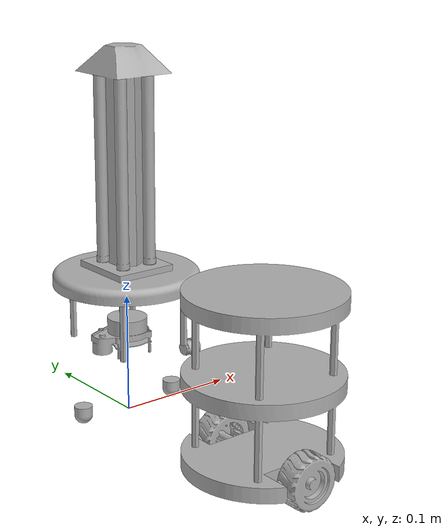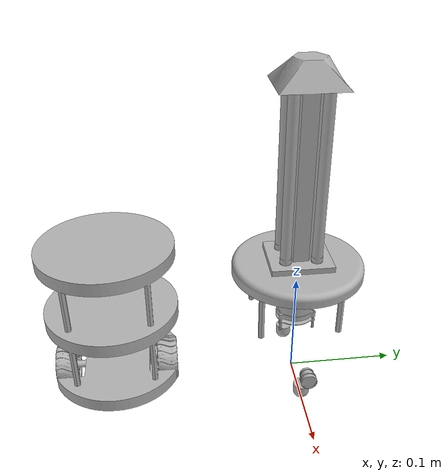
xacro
<?xml version="1.0" ?>
<robot name="robot_2" xmlns:xacro="http://www.ros.org/wiki/xacro">

<xacro:include filename="$(find robot_2_description)/urdf/materials.xacro" />
<xacro:include filename="$(find robot_2_description)/urdf/robot_2.trans" />

<xacro:include filename="$(find robot_2_description)/urdf/g_plugins.gazebo" />
<xacro:include filename="$(find robot_2_description)/urdf/g_materials.gazebo" />

<link name="base_link">
  <inertial>
    <origin rpy="0 0 0" xyz="3.5816918795225934e-16 2.8066438062523963e-15 0.039965017681875464"/>
    <mass value="3.4554954622682565"/>
    <inertia ixx="0.002966" ixy="0.0" ixz="-0.0" iyy="0.004254" iyz="0.0" izz="0.005908"/>
  </inertial>
  <visual>
    <origin rpy="0 0 0" xyz="0 0 0"/>
    <geometry>
      <mesh filename="package://robot_2_description/meshes/base_link.stl" scale="0.001 0.001 0.001"/>
    </geometry>
    <material name="silver"/>
  </visual>
  <collision>
    <origin rpy="0 0 0" xyz="0 0 0"/>
    <geometry>
      <mesh filename="package://robot_2_description/meshes/base_link.stl" scale="0.001 0.001 0.001"/>
    </geometry>
  </collision>
</link>

<link name="wheel1_1">
  <inertial>
    <origin rpy="0 0 0" xyz="1.3424177385424168e-09 -0.1663662605305044 -0.0010061415991715617"/>
    <mass value="0.135584559283875"/>
    <inertia ixx="2.1e-05" ixy="0.0" ixz="0.0" iyy="3.5e-05" iyz="-0.0" izz="2.1e-05"/>
  </inertial>
  <visual>
    <origin rpy="0 0 0" xyz="-0.0 -0.125 -0.022"/>
    <geometry>
      <mesh filename="package://robot_2_description/meshes/wheel1_1.stl" scale="0.001 0.001 0.001"/>
    </geometry>
    <material name="silver"/>
  </visual>
  <collision>
    <origin rpy="0 0 0" xyz="-0.0 -0.125 -0.022"/>
    <geometry>
      <mesh filename="package://robot_2_description/meshes/wheel1_1.stl" scale="0.001 0.001 0.001"/>
    </geometry>
  </collision>
</link>

<link name="wheel2_1">
  <inertial>
    <origin rpy="0 0 0" xyz="-4.338940176040751e-09 -0.17363375909041223 -0.0010061405085263903"/>
    <mass value="0.13558455928387872"/>
    <inertia ixx="2.1e-05" ixy="0.0" ixz="-0.0" iyy="3.5e-05" iyz="0.0" izz="2.1e-05"/>
  </inertial>
  <visual>
    <origin rpy="0 0 0" xyz="-0.0 -0.215 -0.022"/>
    <geometry>
      <mesh filename="package://robot_2_description/meshes/wheel2_1.stl" scale="0.001 0.001 0.001"/>
    </geometry>
    <material name="silver"/>
  </visual>
  <collision>
    <origin rpy="0 0 0" xyz="-0.0 -0.215 -0.022"/>
    <geometry>
      <mesh filename="package://robot_2_description/meshes/wheel2_1.stl" scale="0.001 0.001 0.001"/>
    </geometry>
  </collision>
</link>

<link name="LIDAR_1">
  <inertial>
    <origin rpy="0 0 0" xyz="-0.004147049785164079 2.3270274596143282e-15 0.010100571111383835"/>
    <mass value="0.14394520677893105"/>
    <inertia ixx="1.5e-05" ixy="0.0" ixz="-5e-06" iyy="2.7e-05" iyz="0.0" izz="3.1e-05"/>
  </inertial>
  <visual>
    <origin rpy="0 0 0" xyz="-0.0 -0.0 -0.062"/>
    <geometry>
      <mesh filename="package://robot_2_description/meshes/LIDAR_1.stl" scale="0.001 0.001 0.001"/>
    </geometry>
    <material name="silver"/>
  </visual>
  <collision>
    <origin rpy="0 0 0" xyz="-0.0 -0.0 -0.062"/>
    <geometry>
      <mesh filename="package://robot_2_description/meshes/LIDAR_1.stl" scale="0.001 0.001 0.001"/>
    </geometry>
  </collision>
</link>

<link name="b_pill_3_1">
  <inertial>
    <origin rpy="0 0 0" xyz="0.030000000000000325 -0.20699999999999746 0.02399999999998806"/>
    <mass value="0.0084978742746349"/>
    <inertia ixx="2e-06" ixy="0.0" ixz="0.0" iyy="2e-06" iyz="-0.0" izz="0.0"/>
  </inertial>
  <visual>
    <origin rpy="0 0 0" xyz="-0.0 -0.17 -0.063"/>
    <geometry>
      <mesh filename="package://robot_2_description/meshes/b_pill_3_1.stl" scale="0.001 0.001 0.001"/>
    </geometry>
    <material name="silver"/>
  </visual>
  <collision>
    <origin rpy="0 0 0" xyz="-0.0 -0.17 -0.063"/>
    <geometry>
      <mesh filename="package://robot_2_description/meshes/b_pill_3_1.stl" scale="0.001 0.001 0.001"/>
    </geometry>
  </collision>
</link>

<link name="b_pill_4_1">
  <inertial>
    <origin rpy="0 0 0" xyz="-0.02999999999999966 -0.2069999999999975 0.023999999999987823"/>
    <mass value="0.0084978742746348"/>
    <inertia ixx="2e-06" ixy="-0.0" ixz="0.0" iyy="2e-06" iyz="-0.0" izz="0.0"/>
  </inertial>
  <visual>
    <origin rpy="0 0 0" xyz="-0.0 -0.17 -0.063"/>
    <geometry>
      <mesh filename="package://robot_2_description/meshes/b_pill_4_1.stl" scale="0.001 0.001 0.001"/>
    </geometry>
    <material name="silver"/>
  </visual>
  <collision>
    <origin rpy="0 0 0" xyz="-0.0 -0.17 -0.063"/>
    <geometry>
      <mesh filename="package://robot_2_description/meshes/b_pill_4_1.stl" scale="0.001 0.001 0.001"/>
    </geometry>
  </collision>
</link>

<link name="b_pill_2_1">
  <inertial>
    <origin rpy="0 0 0" xyz="-0.0299999999999996 -0.1349999999999973 0.023999999999987878"/>
    <mass value="0.008497874274634876"/>
    <inertia ixx="2e-06" ixy="0.0" ixz="0.0" iyy="2e-06" iyz="0.0" izz="0.0"/>
  </inertial>
  <visual>
    <origin rpy="0 0 0" xyz="-0.0 -0.17 -0.063"/>
    <geometry>
      <mesh filename="package://robot_2_description/meshes/b_pill_2_1.stl" scale="0.001 0.001 0.001"/>
    </geometry>
    <material name="silver"/>
  </visual>
  <collision>
    <origin rpy="0 0 0" xyz="-0.0 -0.17 -0.063"/>
    <geometry>
      <mesh filename="package://robot_2_description/meshes/b_pill_2_1.stl" scale="0.001 0.001 0.001"/>
    </geometry>
  </collision>
</link>

<link name="b_pill_1_1">
  <inertial>
    <origin rpy="0 0 0" xyz="0.030000000000000363 -0.13499999999999732 0.02399999999998781"/>
    <mass value="0.008497874274634809"/>
    <inertia ixx="2e-06" ixy="0.0" ixz="0.0" iyy="2e-06" iyz="0.0" izz="0.0"/>
  </inertial>
  <visual>
    <origin rpy="0 0 0" xyz="-0.0 -0.17 -0.063"/>
    <geometry>
      <mesh filename="package://robot_2_description/meshes/b_pill_1_1.stl" scale="0.001 0.001 0.001"/>
    </geometry>
    <material name="silver"/>
  </visual>
  <collision>
    <origin rpy="0 0 0" xyz="-0.0 -0.17 -0.063"/>
    <geometry>
      <mesh filename="package://robot_2_description/meshes/b_pill_1_1.stl" scale="0.001 0.001 0.001"/>
    </geometry>
  </collision>
</link>

<link name="lamp1_1">
  <inertial>
    <origin rpy="0 0 0" xyz="-1.0062974691374404e-08 1.3291860086715734e-07 0.0787499999999847"/>
    <mass value="0.09355129470031465"/>
    <inertia ixx="0.000198" ixy="0.0" ixz="-0.0" iyy="0.000198" iyz="0.0" izz="1e-06"/>
  </inertial>
  <visual>
    <origin rpy="0 0 0" xyz="-0.012958 0.014121 -0.12925"/>
    <geometry>
      <mesh filename="package://robot_2_description/meshes/lamp1_1.stl" scale="0.001 0.001 0.001"/>
    </geometry>
    <material name="silver"/>
  </visual>
  <collision>
    <origin rpy="0 0 0" xyz="-0.012958 0.014121 -0.12925"/>
    <geometry>
      <mesh filename="package://robot_2_description/meshes/lamp1_1.stl" scale="0.001 0.001 0.001"/>
    </geometry>
  </collision>
</link>

<link name="lamp2_1">
  <inertial>
    <origin rpy="0 0 0" xyz="-1.006297849215354e-08 -1.3291858960533254e-07 0.07874999999998664"/>
    <mass value="0.09355129470031447"/>
    <inertia ixx="0.000198" ixy="0.0" ixz="-0.0" iyy="0.000198" iyz="-0.0" izz="1e-06"/>
  </inertial>
  <visual>
    <origin rpy="0 0 0" xyz="-0.012958 -0.014121 -0.12925"/>
    <geometry>
      <mesh filename="package://robot_2_description/meshes/lamp2_1.stl" scale="0.001 0.001 0.001"/>
    </geometry>
    <material name="silver"/>
  </visual>
  <collision>
    <origin rpy="0 0 0" xyz="-0.012958 -0.014121 -0.12925"/>
    <geometry>
      <mesh filename="package://robot_2_description/meshes/lamp2_1.stl" scale="0.001 0.001 0.001"/>
    </geometry>
  </collision>
</link>

<link name="lamp3_1">
  <inertial>
    <origin rpy="0 0 0" xyz="1.0062992399431647e-08 1.3291856097025212e-07 0.07874999999998694"/>
    <mass value="0.09355129470031473"/>
    <inertia ixx="0.000198" ixy="0.0" ixz="-0.0" iyy="0.000198" iyz="0.0" izz="1e-06"/>
  </inertial>
  <visual>
    <origin rpy="0 0 0" xyz="0.012958 0.014121 -0.12925"/>
    <geometry>
      <mesh filename="package://robot_2_description/meshes/lamp3_1.stl" scale="0.001 0.001 0.001"/>
    </geometry>
    <material name="silver"/>
  </visual>
  <collision>
    <origin rpy="0 0 0" xyz="0.012958 0.014121 -0.12925"/>
    <geometry>
      <mesh filename="package://robot_2_description/meshes/lamp3_1.stl" scale="0.001 0.001 0.001"/>
    </geometry>
  </collision>
</link>

<link name="lamp4_1">
  <inertial>
    <origin rpy="0 0 0" xyz="1.0063024193443515e-08 -1.329185752522305e-07 0.07874999999998822"/>
    <mass value="0.09355129470031386"/>
    <inertia ixx="0.000198" ixy="0.0" ixz="-0.0" iyy="0.000198" iyz="0.0" izz="1e-06"/>
  </inertial>
  <visual>
    <origin rpy="0 0 0" xyz="0.012958 -0.014121 -0.12925"/>
    <geometry>
      <mesh filename="package://robot_2_description/meshes/lamp4_1.stl" scale="0.001 0.001 0.001"/>
    </geometry>
    <material name="silver"/>
  </visual>
  <collision>
    <origin rpy="0 0 0" xyz="0.012958 -0.014121 -0.12925"/>
    <geometry>
      <mesh filename="package://robot_2_description/meshes/lamp4_1.stl" scale="0.001 0.001 0.001"/>
    </geometry>
  </collision>
</link>

<link name="disk_top__1">
  <inertial>
    <origin rpy="0 0 0" xyz="0.025000000000000418 -0.20499999999999707 -0.1500804748457522"/>
    <mass value="1.047808361673193"/>
    <inertia ixx="0.000941" ixy="0.0" ixz="0.0" iyy="0.000941" iyz="0.0" izz="0.001857"/>
  </inertial>
  <visual>
    <origin rpy="0 0 0" xyz="0.025 -0.205 -0.268"/>
    <geometry>
      <mesh filename="package://robot_2_description/meshes/disk_top__1.stl" scale="0.001 0.001 0.001"/>
    </geometry>
    <material name="silver"/>
  </visual>
  <collision>
    <origin rpy="0 0 0" xyz="0.025 -0.205 -0.268"/>
    <geometry>
      <mesh filename="package://robot_2_description/meshes/disk_top__1.stl" scale="0.001 0.001 0.001"/>
    </geometry>
  </collision>
</link>

<link name="top_struct_1">
  <inertial>
    <origin rpy="0 0 0" xyz="0.00018784276623245777 -6.746205231994651e-05 0.10535186097086746"/>
    <mass value="0.5827013739765131"/>
    <inertia ixx="0.00274" ixy="0.0" ixz="-1e-06" iyy="0.00273" iyz="0.0" izz="0.000164"/>
  </inertial>
  <visual>
    <origin rpy="0 0 0" xyz="-0.0 -0.0 -0.124"/>
    <geometry>
      <mesh filename="package://robot_2_description/meshes/top_struct_1.stl" scale="0.001 0.001 0.001"/>
    </geometry>
    <material name="silver"/>
  </visual>
  <collision>
    <origin rpy="0 0 0" xyz="-0.0 -0.0 -0.124"/>
    <geometry>
      <mesh filename="package://robot_2_description/meshes/top_struct_1.stl" scale="0.001 0.001 0.001"/>
    </geometry>
  </collision>
</link>

<link name="Camera_1">
  <inertial>
    <origin rpy="0 0 0" xyz="0.06506608163852702 -0.19999999998975446 0.02400000001712703"/>
    <mass value="0.013116237909885132"/>
    <inertia ixx="0.0" ixy="0.0" ixz="-0.0" iyy="0.0" iyz="-0.0" izz="0.0"/>
  </inertial>
  <visual>
    <origin rpy="0 0 0" xyz="-0.0 -0.2 -0.016"/>
    <geometry>
      <mesh filename="package://robot_2_description/meshes/Camera_1.stl" scale="0.001 0.001 0.001"/>
    </geometry>
    <material name="silver"/>
  </visual>
  <collision>
    <origin rpy="0 0 0" xyz="-0.0 -0.2 -0.016"/>
    <geometry>
      <mesh filename="package://robot_2_description/meshes/Camera_1.stl" scale="0.001 0.001 0.001"/>
    </geometry>
  </collision>
</link>

<link name="Component6_1">
  <inertial>
    <origin rpy="0 0 0" xyz="0.04499999999952983 -0.16999999999999713 -0.0073750000000120264"/>
    <mass value="0.017340118826259073"/>
    <inertia ixx="0.0" ixy="0.0" ixz="0.0" iyy="0.0" iyz="0.0" izz="0.0"/>
  </inertial>
  <visual>
    <origin rpy="0 0 0" xyz="-0.0 -0.17 -0.016"/>
    <geometry>
      <mesh filename="package://robot_2_description/meshes/Component6_1.stl" scale="0.001 0.001 0.001"/>
    </geometry>
    <material name="silver"/>
  </visual>
  <collision>
    <origin rpy="0 0 0" xyz="-0.0 -0.17 -0.016"/>
    <geometry>
      <mesh filename="package://robot_2_description/meshes/Component6_1.stl" scale="0.001 0.001 0.001"/>
    </geometry>
  </collision>
</link>

<link name="Component16_1">
  <inertial>
    <origin rpy="0 0 0" xyz="-0.045000000000470136 -0.169999999999997 -0.00737500000001204"/>
    <mass value="0.017340118826259084"/>
    <inertia ixx="0.0" ixy="-0.0" ixz="0.0" iyy="0.0" iyz="0.0" izz="0.0"/>
  </inertial>
  <visual>
    <origin rpy="0 0 0" xyz="-0.0 -0.17 -0.016"/>
    <geometry>
      <mesh filename="package://robot_2_description/meshes/Component16_1.stl" scale="0.001 0.001 0.001"/>
    </geometry>
    <material name="silver"/>
  </visual>
  <collision>
    <origin rpy="0 0 0" xyz="-0.0 -0.17 -0.016"/>
    <geometry>
      <mesh filename="package://robot_2_description/meshes/Component16_1.stl" scale="0.001 0.001 0.001"/>
    </geometry>
  </collision>
</link>

<joint name="wheel_joint_1" type="continuous">
  <origin rpy="0 0 0" xyz="0.0 0.125 0.022"/>
  <parent link="base_link"/>
  <child link="wheel1_1"/>
  <axis xyz="-0.0 1.0 0.0"/>
</joint>

<joint name="wheel_joint_2" type="continuous">
  <origin rpy="0 0 0" xyz="0.0 0.215 0.022"/>
  <parent link="base_link"/>
  <child link="wheel2_1"/>
  <axis xyz="0.0 1.0 -0.0"/>
</joint>

<joint name="LIDAR_joint" type="fixed">
  <origin rpy="0 0 0" xyz="0.0 0.0 0.062"/>
  <parent link="base_link"/>
  <child link="LIDAR_1"/>
</joint>

<joint name="b_pill_joint_3" type="fixed">
  <origin rpy="0 0 0" xyz="0.0 0.17 0.063"/>
  <parent link="base_link"/>
  <child link="b_pill_3_1"/>
</joint>

<joint name="b_pill_joint_4" type="fixed">
  <origin rpy="0 0 0" xyz="0.0 0.17 0.063"/>
  <parent link="base_link"/>
  <child link="b_pill_4_1"/>
</joint>

<joint name="b_pill_joint_2" type="fixed">
  <origin rpy="0 0 0" xyz="0.0 0.17 0.063"/>
  <parent link="base_link"/>
  <child link="b_pill_2_1"/>
</joint>

<joint name="b_pill_joint_1" type="fixed">
  <origin rpy="0 0 0" xyz="0.0 0.17 0.063"/>
  <parent link="base_link"/>
  <child link="b_pill_1_1"/>
</joint>

<joint name="lamp_joint_1" type="fixed">
  <origin rpy="0 0 0" xyz="0.012958 -0.014121 0.00525"/>
  <parent link="top_struct_1"/>
  <child link="lamp1_1"/>
</joint>

<joint name="lamp_joint_2" type="fixed">
  <origin rpy="0 0 0" xyz="0.012958 0.014121 0.00525"/>
  <parent link="top_struct_1"/>
  <child link="lamp2_1"/>
</joint>

<joint name="lamp_joint_3" type="fixed">
  <origin rpy="0 0 0" xyz="-0.012958 -0.014121 0.00525"/>
  <parent link="top_struct_1"/>
  <child link="lamp3_1"/>
</joint>

<joint name="lamp_joint_4" type="fixed">
  <origin rpy="0 0 0" xyz="-0.012958 0.014121 0.00525"/>
  <parent link="top_struct_1"/>
  <child link="lamp4_1"/>
</joint>

<joint name="top_disk_pill_joint" type="fixed">
  <origin rpy="0 0 0" xyz="-0.025 0.035 0.205"/>
  <parent link="b_pill_2_1"/>
  <child link="disk_top__1"/>
</joint>

<joint name="top_struct_disk_joint" type="fixed">
  <origin rpy="0 0 0" xyz="0.025 -0.205 -0.144"/>
  <parent link="disk_top__1"/>
  <child link="top_struct_1"/>
</joint>

<joint name="camera joint" type="fixed">
  <origin rpy="0 0 0" xyz="0.0 0.2 0.016"/>
  <parent link="base_link"/>
  <child link="Camera_1"/>
</joint>

<joint name="caster_joint_1" type="fixed">
  <origin rpy="0 0 0" xyz="0.0 0.17 0.016"/>
  <parent link="base_link"/>
  <child link="Component6_1"/>
</joint>

<joint name="caster_joint_2" type="fixed">
  <origin rpy="0 0 0" xyz="0.0 0.17 0.016"/>
  <parent link="base_link"/>
  <child link="Component16_1"/>
</joint>

</robot>

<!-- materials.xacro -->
<robot name="AJ_Robot_1" xmlns:xacro="http://www.ros.org/wiki/xacro" >

<material name="silver">
  <color rgba="0.700 0.700 0.700 1.000"/>
</material>

</robot>

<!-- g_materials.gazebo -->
<robot name="robot_2" xmlns:xacro="http://www.ros.org/wiki/xacro" >

<xacro:property name="body_color" value="Gazebo/Silver" />

<gazebo reference="base_link">
  <material>${body_color}</material>
  <mu1>0.2</mu1>
  <mu2>0.2</mu2>
  <selfCollide>true</selfCollide>
  <gravity>true</gravity>
</gazebo>

<gazebo reference="wheel1_1">
  <material>${body_color}</material>
  <mu1>100</mu1>
  <mu2>100</mu2>
  <selfCollide>true</selfCollide>
</gazebo>

<gazebo reference="wheel2_1">
  <material>${body_color}</material>
  <mu1>100</mu1>
  <mu2>100</mu2>
  <selfCollide>true</selfCollide>
</gazebo>

<gazebo reference="LIDAR_1">
  <material>${body_color}</material>
  <mu1>0.2</mu1>
  <mu2>0.2</mu2>
  <selfCollide>true</selfCollide>
</gazebo>

<gazebo reference="b_pill_3_1">
  <material>${body_color}</material>
  <mu1>0.2</mu1>
  <mu2>0.2</mu2>
  <selfCollide>true</selfCollide>
</gazebo>

<gazebo reference="b_pill_4_1">
  <material>${body_color}</material>
  <mu1>0.2</mu1>
  <mu2>0.2</mu2>
  <selfCollide>true</selfCollide>
</gazebo>

<gazebo reference="b_pill_2_1">
  <material>${body_color}</material>
  <mu1>0.2</mu1>
  <mu2>0.2</mu2>
  <selfCollide>true</selfCollide>
</gazebo>

<gazebo reference="b_pill_1_1">
  <material>${body_color}</material>
  <mu1>0.2</mu1>
  <mu2>0.2</mu2>
  <selfCollide>true</selfCollide>
</gazebo>

<gazebo reference="lamp1_1">
  <material>${body_color}</material>
  <mu1>0.2</mu1>
  <mu2>0.2</mu2>
  <selfCollide>true</selfCollide>
</gazebo>

<gazebo reference="lamp2_1">
  <material>${body_color}</material>
  <mu1>0.2</mu1>
  <mu2>0.2</mu2>
  <selfCollide>true</selfCollide>
</gazebo>

<gazebo reference="lamp3_1">
  <material>${body_color}</material>
  <mu1>0.2</mu1>
  <mu2>0.2</mu2>
  <selfCollide>true</selfCollide>
</gazebo>

<gazebo reference="lamp4_1">
  <material>${body_color}</material>
  <mu1>0.2</mu1>
  <mu2>0.2</mu2>
  <selfCollide>true</selfCollide>
</gazebo>

<gazebo reference="disk_top__1">
  <material>${body_color}</material>
  <mu1>0.2</mu1>
  <mu2>0.2</mu2>
  <selfCollide>true</selfCollide>
</gazebo>

<gazebo reference="top_struct_1">
  <material>${body_color}</material>
  <mu1>0.2</mu1>
  <mu2>0.2</mu2>
  <selfCollide>true</selfCollide>
</gazebo>

<gazebo reference="Camera_1">
  <material>${body_color}</material>
  <mu1>0.2</mu1>
  <mu2>0.2</mu2>
  <selfCollide>true</selfCollide>
</gazebo>

<gazebo reference="Component6_1">
  <material>${body_color}</material>
  <mu1>0.01</mu1>
  <mu2>0.01</mu2>
  <selfCollide>true</selfCollide>
</gazebo>

<gazebo reference="Component16_1">
  <material>${body_color}</material>
  <mu1>0.01</mu1>
  <mu2>0.01</mu2>
  <selfCollide>true</selfCollide>
</gazebo>

</robot>
